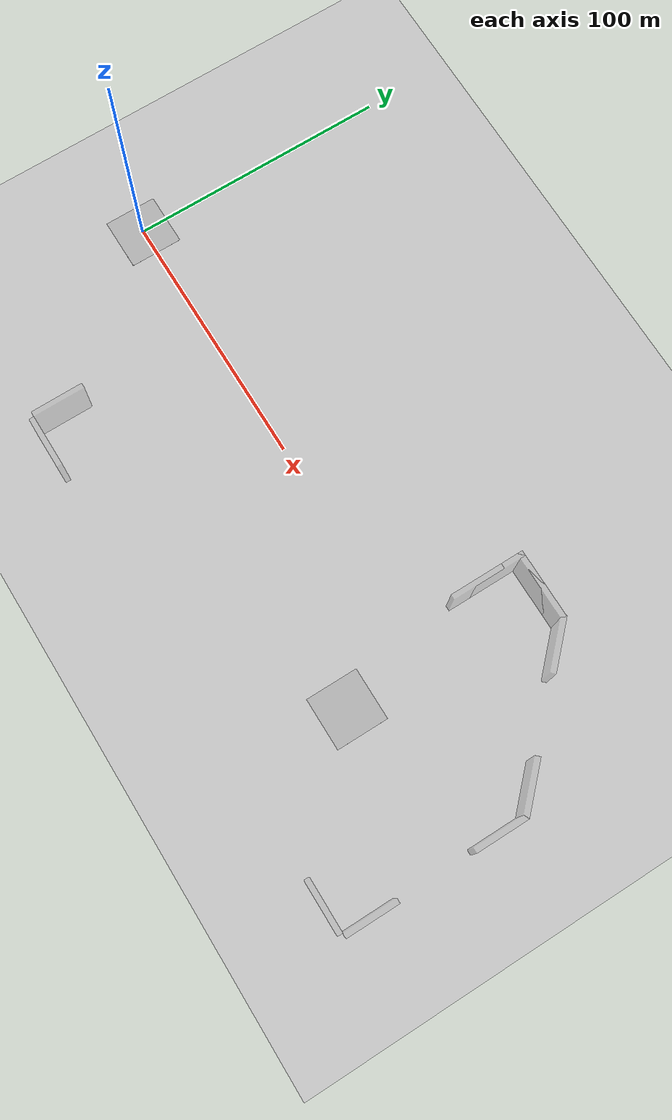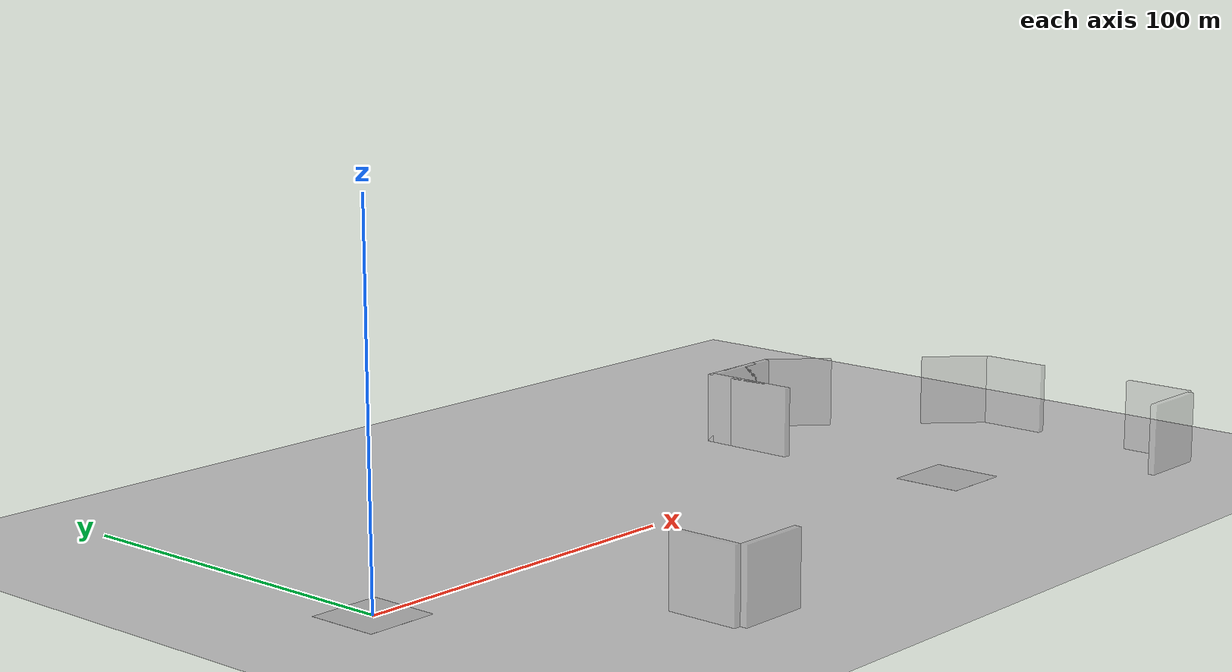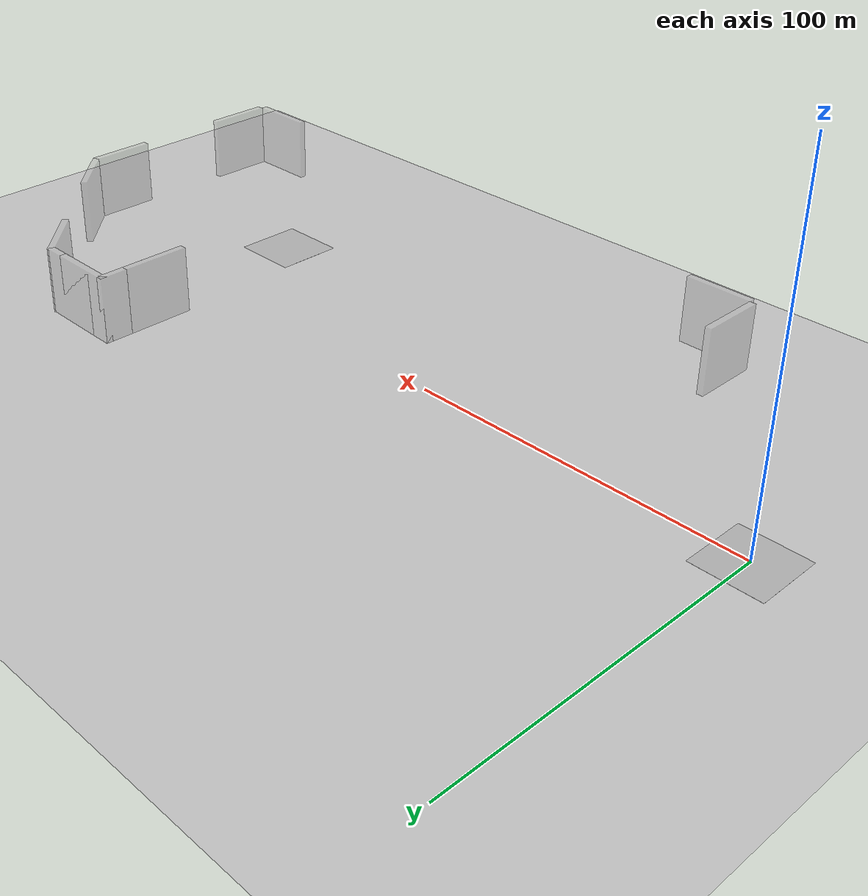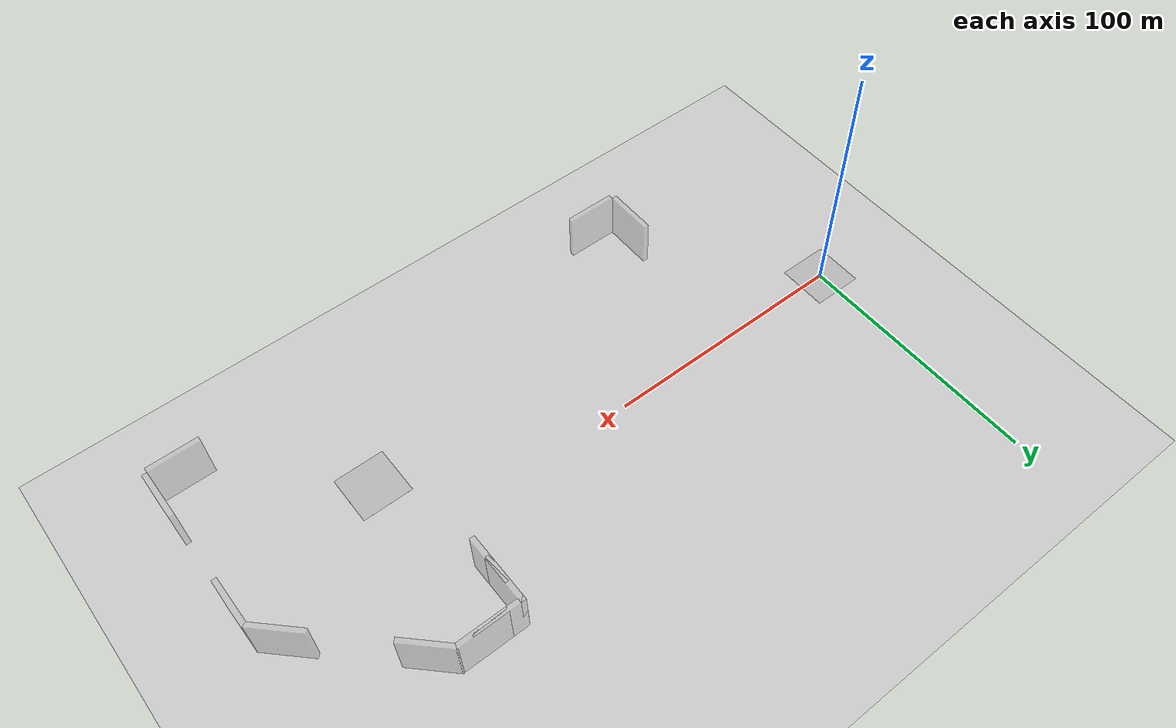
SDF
<sdf version="1.7">
 <world name="default">
  <scene>
   <ambient>0.8 0.8 0.8 1</ambient>
   <grid>0</grid>
   <shadows>1</shadows>
   <sky><clouds><speed>12</speed></clouds></sky>
   <background>0.7 0.7 0.7 1</background>
  </scene>
  <physics name="default_physics" default="0" type="ode">
   <gravity>0 0 -9.8066</gravity>
   <ode>
    <solver>
     <type>quick</type>
     <iters>10</iters>
     <sor>1.3</sor>
     <use_dynamic_moi_rescaling>0</use_dynamic_moi_rescaling>
    </solver>
    <constraints>
     <cfm>0</cfm>
     <erp>0.2</erp>
     <contact_max_correcting_vel>100</contact_max_correcting_vel>
     <contact_surface_layer>0.001</contact_surface_layer>
    </constraints>
   </ode>
   <max_step_size>0.004</max_step_size>
   <real_time_factor>1</real_time_factor>
   <real_time_update_rate>250</real_time_update_rate>
   <magnetic_field>6e-06 2.3e-05 -4.2e-05</magnetic_field>
  </physics>
  <scene><ambient>0.4 0.4 0.4 1</ambient><background>0.7 0.7 0.7 1</background><shadows>1</shadows></scene>
  <spherical_coordinates>
   <surface_model>EARTH_WGS84</surface_model>
   <latitude_deg>0</latitude_deg>
   <longitude_deg>0</longitude_deg>
   <elevation>0</elevation>
   <heading_deg>0</heading_deg>
  </spherical_coordinates>
  <model name="grass_plane">
   <static>1</static>
   <link name="link">
    <collision name="collision">
     <geometry><plane><normal>0 0 1</normal><size>1000 1000</size></plane></geometry>
     <surface><friction><ode><mu>100</mu><mu2>50</mu2></ode></friction></surface>
    </collision>
    <visual name="visual">
     <cast_shadows>0</cast_shadows>
     <geometry><plane><normal>0 0 1</normal><size>1000 1000</size></plane></geometry>
     <material>
      <script>
       <uri>model://grass_plane/materials/scripts</uri>
       <uri>model://grass_plane/materials/textures/</uri>
       <name>GrassPlane/Image</name>
      </script>
     </material>
    </visual>
   </link>
  </model>
  <light name="user_point_light_0" type="point">
   <pose>23.8233 -58.8428 1 0 -0 0</pose>
   <diffuse>0.5 0.5 0.5 1</diffuse>
   <specular>0.1 0.1 0.1 1</specular>
   <attenuation>
    <range>20</range>
    <constant>0.5</constant>
    <linear>0.01</linear>
    <quadratic>0.001</quadratic>
   </attenuation>
   <cast_shadows>0</cast_shadows>
   <direction>0 0 -1</direction>
   <spot><inner_angle>0</inner_angle><outer_angle>0</outer_angle><falloff>0</falloff></spot>
  </light>
  <model name="new_wall">
   <static>1</static>
   <link name="link">
    <collision name="collision">
     <geometry><box><size>20 20 2</size></box></geometry>
     <surface><friction><ode><mu>100</mu><mu2>50</mu2></ode></friction></surface>
    </collision>
    <visual name="visual">
     <transparency>0.6</transparency>
     <geometry><box><size>20 20 2</size></box></geometry>
     <material>
      <script>
       <uri>model://new_wall/materials/scripts</uri>
       <uri>model://new_wall/materials/textures/</uri>
       <name>NewWall/Image</name>
      </script>
     </material>
    </visual>
   </link>
   <pose>60 -71 10 -1.57 0 0</pose>
  </model>
  <model name="new_wall_clone">
   <static>1</static>
   <link name="link">
    <collision name="collision">
     <geometry><box><size>20 20 2</size></box></geometry>
     <surface><friction><ode><mu>100</mu><mu2>50</mu2></ode></friction></surface>
    </collision>
    <visual name="visual">
     <transparency>0.6</transparency>
     <geometry><box><size>20 20 2</size></box></geometry>
     <material>
      <script>
       <uri>model://new_wall/materials/scripts</uri>
       <uri>model://new_wall/materials/textures/</uri>
       <name>NewWall/Image</name>
      </script>
     </material>
    </visual>
   </link>
   <pose>49 -60 10 -1.57 -0 -1.57</pose>
  </model>
  <model name="new_wall_clone_clone">
   <static>1</static>
   <link name="link">
    <collision name="collision">
     <geometry><box><size>20 20 2</size></box></geometry>
     <surface><friction><ode><mu>100</mu><mu2>50</mu2></ode></friction></surface>
    </collision>
    <visual name="visual">
     <transparency>0.6</transparency>
     <geometry><box><size>20 20 2</size></box></geometry>
     <material>
      <script>
       <uri>model://new_wall/materials/scripts</uri>
       <uri>model://new_wall/materials/textures/</uri>
       <name>NewWall/Image</name>
      </script>
     </material>
    </visual>
   </link>
   <pose>251 -60 10 -1.57 -0 -1.57</pose>
  </model>
  <model name="new_wall_clone_0">
   <static>1</static>
   <link name="link">
    <collision name="collision">
     <geometry><box><size>20 20 2</size></box></geometry>
     <surface><friction><ode><mu>100</mu><mu2>50</mu2></ode></friction></surface>
    </collision>
    <visual name="visual">
     <transparency>0.6</transparency>
     <geometry><box><size>20 20 2</size></box></geometry>
     <material>
      <script>
       <uri>model://new_wall/materials/scripts</uri>
       <uri>model://new_wall/materials/textures/</uri>
       <name>NewWall/Image</name>
      </script>
     </material>
    </visual>
   </link>
   <pose>240 -71 10 -1.57 0 0</pose>
  </model>
  <model name="new_wall_clone_clone_clone">
   <static>1</static>
   <link name="link">
    <collision name="collision">
     <geometry><box><size>20 20 2</size></box></geometry>
     <surface><friction><ode><mu>100</mu><mu2>50</mu2></ode></friction></surface>
    </collision>
    <visual name="visual">
     <transparency>0.6</transparency>
     <geometry><box><size>20 20 2</size></box></geometry>
     <material>
      <script>
       <uri>model://new_wall/materials/scripts</uri>
       <uri>model://new_wall/materials/textures/</uri>
       <name>NewWall/Image</name>
      </script>
     </material>
    </visual>
   </link>
   <pose>251 -11 10 -1.57 -0 -1.57</pose>
  </model>
  <model name="new_wall_clone_clone_clone_clone">
   <static>1</static>
   <link name="link">
    <collision name="collision">
     <geometry><box><size>20 20 2</size></box></geometry>
     <surface><friction><ode><mu>100</mu><mu2>50</mu2></ode></friction></surface>
    </collision>
    <visual name="visual">
     <transparency>0.6</transparency>
     <geometry><box><size>20 20 2</size></box></geometry>
     <material>
      <script>
       <uri>model://new_wall/materials/scripts</uri>
       <uri>model://new_wall/materials/textures/</uri>
       <name>NewWall/Image</name>
      </script>
     </material>
    </visual>
   </link>
   <pose>244.1 5.5 10 -1.57 1e-06 -0.7854</pose>
  </model>
  <model name="new_wall_clone_clone_clone_clone_clone">
   <static>1</static>
   <link name="link">
    <collision name="collision">
     <geometry><box><size>20 20 2</size></box></geometry>
     <surface><friction><ode><mu>100</mu><mu2>50</mu2></ode></friction></surface>
    </collision>
    <visual name="visual">
     <transparency>0.6</transparency>
     <geometry><box><size>20 20 2</size></box></geometry>
     <material>
      <script>
       <uri>model://new_wall/materials/scripts</uri>
       <uri>model://new_wall/materials/textures/</uri>
       <name>NewWall/Image</name>
      </script>
     </material>
    </visual>
   </link>
   <pose>210.5 39 10 -1.57 1e-06 -0.7854</pose>
  </model>
  <model name="new_wall_clone_clone_clone_0">
   <static>1</static>
   <link name="link">
    <collision name="collision">
     <geometry><box><size>20 20 2</size></box></geometry>
     <surface><friction><ode><mu>100</mu><mu2>50</mu2></ode></friction></surface>
    </collision>
    <visual name="visual">
     <transparency>0.6</transparency>
     <geometry><box><size>20 20 2</size></box></geometry>
     <material>
      <script>
       <uri>model://new_wall/materials/scripts</uri>
       <uri>model://new_wall/materials/textures/</uri>
       <name>NewWall/Image</name>
      </script>
     </material>
    </visual>
   </link>
   <pose>179 28 10 -1.57 -0 -1.57</pose>
  </model>
  <model name="new_wall_clone_0_clone">
   <static>1</static>
   <link name="link">
    <collision name="collision">
     <geometry><box><size>20 20 2</size></box></geometry>
     <surface><friction><ode><mu>100</mu><mu2>50</mu2></ode></friction></surface>
    </collision>
    <visual name="visual">
     <transparency>0.6</transparency>
     <geometry><box><size>20 20 2</size></box></geometry>
     <material>
      <script>
       <uri>model://new_wall/materials/scripts</uri>
       <uri>model://new_wall/materials/textures/</uri>
       <name>NewWall/Image</name>
      </script>
     </material>
    </visual>
   </link>
   <pose>188 45.5 10 -1.57 0 0</pose>
  </model>
  <model name="new_wall_clone_0_clone_clone">
   <static>1</static>
   <link name="link">
    <collision name="collision">
     <geometry><box><size>20 20 2</size></box></geometry>
     <surface><friction><ode><mu>100</mu><mu2>50</mu2></ode></friction></surface>
    </collision>
    <visual name="visual">
     <transparency>0.6</transparency>
     <geometry><box><size>20 20 2</size></box></geometry>
     <material>
      <script>
       <uri>model://new_wall/materials/scripts</uri>
       <uri>model://new_wall/materials/textures/</uri>
       <name>NewWall/Image</name>
      </script>
     </material>
    </visual>
   </link>
   <pose>194.5 45.5 10 -1.57 0 0</pose>
  </model>
  <model name="new_wall_clone_clone_clone_0_clone">
   <static>1</static>
   <link name="link">
    <collision name="collision">
     <geometry><box><size>20 20 2</size></box></geometry>
     <surface><friction><ode><mu>100</mu><mu2>50</mu2></ode></friction></surface>
    </collision>
    <visual name="visual">
     <transparency>0.6</transparency>
     <geometry><box><size>20 20 2</size></box></geometry>
     <material>
      <script>
       <uri>model://new_wall/materials/scripts</uri>
       <uri>model://new_wall/materials/textures/</uri>
       <name>NewWall/Image</name>
      </script>
     </material>
    </visual>
   </link>
   <pose>179 36.5 10 -1.57 -0 -1.57</pose>
  </model>
  <model name="start_place">
   <static>1</static>
   <link name="link">
    <collision name="collision">
     <geometry><plane><normal>0 0 1</normal><size>20 20</size></plane></geometry>
     <surface><friction><ode><mu>100</mu><mu2>50</mu2></ode></friction></surface>
    </collision>
    <visual name="visual">
     <cast_shadows>0</cast_shadows>
     <geometry><plane><normal>0 0 1</normal><size>20 20</size></plane></geometry>
     <material>
      <script>
       <uri>model://start_place/materials/scripts</uri>
       <uri>model://start_place/materials/textures/</uri>
       <name>StartPlace/Image</name>
      </script>
     </material>
    </visual>
   </link>
   <pose>0 0 0.05 0 -0 1.57</pose>
  </model>
  <model name="finish_place">
   <static>1</static>
   <link name="link">
    <collision name="collision">
     <geometry><plane><normal>0 0 1</normal><size>20 20</size></plane></geometry>
     <surface><friction><ode><mu>100</mu><mu2>50</mu2></ode></friction></surface>
    </collision>
    <visual name="visual">
     <cast_shadows>0</cast_shadows>
     <geometry><plane><normal>0 0 1</normal><size>20 20</size></plane></geometry>
     <material>
      <script>
       <uri>model://finish_place/materials/scripts</uri>
       <uri>model://finish_place/materials/textures/</uri>
       <name>FinishPlace/Image</name>
      </script>
     </material>
    </visual>
   </link>
   <pose>190 -30 0.05 0 -0 0</pose>
  </model>
 </world>
</sdf>
